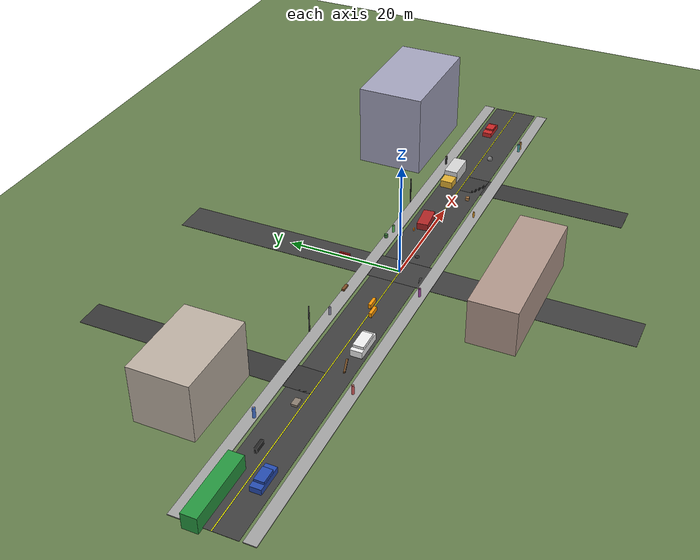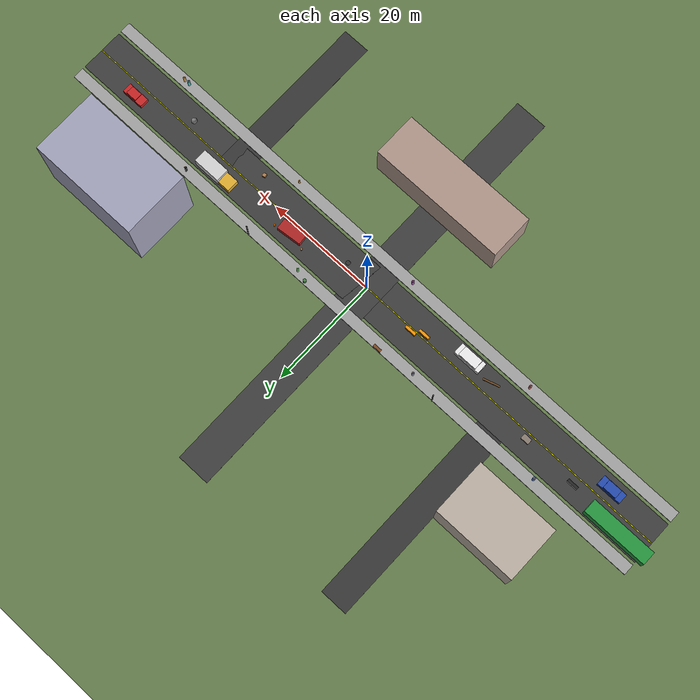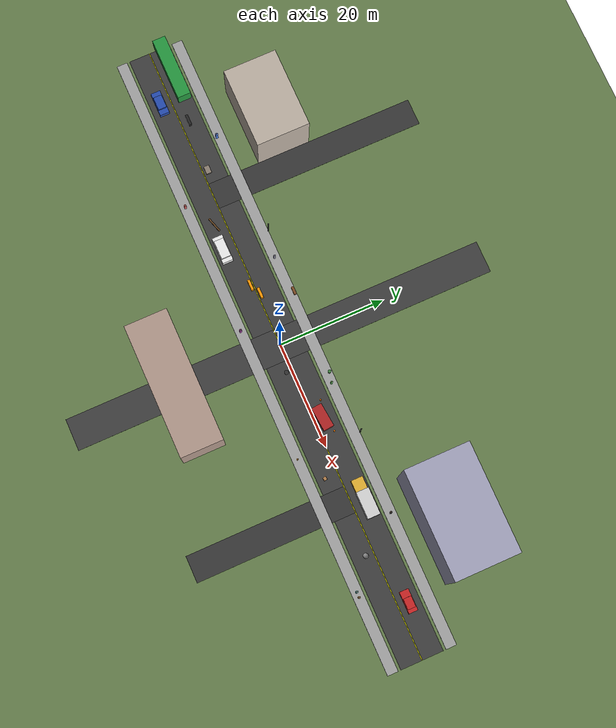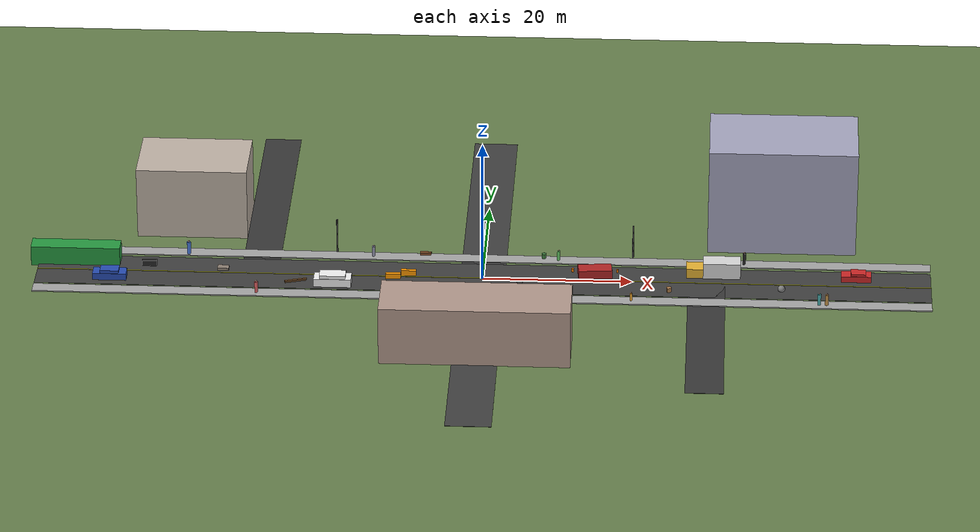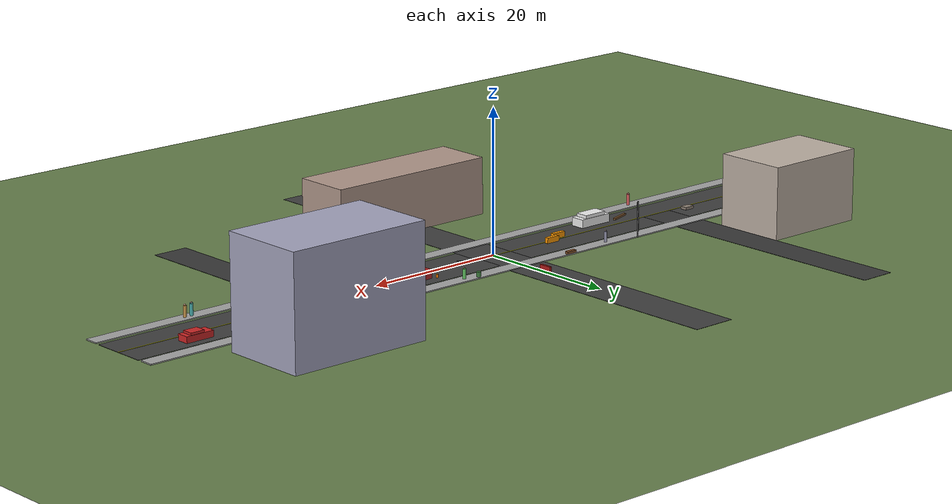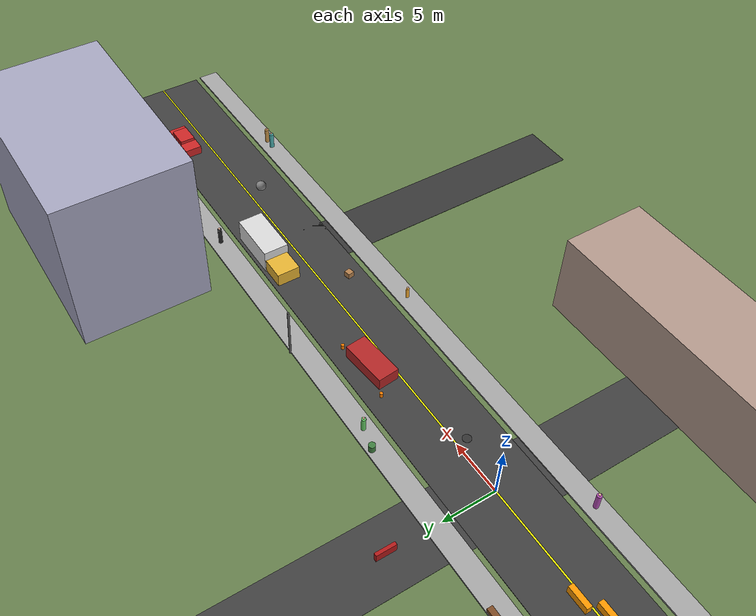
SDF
<?xml version="1.0" ?>
<sdf version="1.6">
  <world name="messy_road">
    <scene>
      <ambient>0.5 0.5 0.5 1</ambient>
      <background>0.7 0.85 1.0 1</background>
      <shadows>true</shadows>
    </scene>

    <light name="sun" type="directional">
      <pose>0 0 100 0 0 0</pose>
      <diffuse>0.9 0.9 0.9 1</diffuse>
      <specular>0.3 0.3 0.3 1</specular>
      <direction>-0.5 0.1 -0.9</direction>
      <cast_shadows>true</cast_shadows>
    </light>

    <physics type="ode">
      <max_step_size>0.001</max_step_size>
      <real_time_factor>1.0</real_time_factor>
      <real_time_update_rate>1000</real_time_update_rate>
    </physics>

    <!-- Ground Plane -->
    <model name="ground_plane">
      <static>true</static>
      <link name="link">
        <collision name="collision">
          <geometry>
            <plane>
              <normal>0 0 1</normal>
              <size>150 150</size>
            </plane>
          </geometry>
        </collision>
        <visual name="visual">
          <geometry>
            <plane>
              <normal>0 0 1</normal>
              <size>150 150</size>
            </plane>
          </geometry>
          <material>
            <ambient>0.4 0.5 0.3 1</ambient>
            <diffuse>0.4 0.5 0.3 1</diffuse>
          </material>
        </visual>
      </link>
    </model>

    <!-- ==================== MAIN ROADS ==================== -->

    <!-- Main Road (East-West) - 8m wide -->
    <model name="main_road_ew">
      <static>true</static>
      <link name="link">
        <pose>0 0 0.02 0 0 0</pose>
        <collision name="collision">
          <geometry>
            <box><size>120 8 0.04</size></box>
          </geometry>
        </collision>
        <visual name="visual">
          <geometry>
            <box><size>120 8 0.04</size></box>
          </geometry>
          <material>
            <ambient>0.2 0.2 0.2 1</ambient>
            <diffuse>0.25 0.25 0.25 1</diffuse>
          </material>
        </visual>
      </link>
    </model>

    <!-- Road Lane Markings -->
    <model name="center_line">
      <static>true</static>
      <link name="link">
        <pose>0 0 0.05 0 0 0</pose>
        <visual name="visual">
          <geometry>
            <box><size>120 0.15 0.01</size></box>
          </geometry>
          <material>
            <ambient>1 1 0 1</ambient>
            <diffuse>1 1 0 1</diffuse>
          </material>
        </visual>
      </link>
    </model>

    <!-- Secondary Road (North-South) - 6m wide -->
    <model name="secondary_road_ns">
      <static>true</static>
      <link name="link">
        <pose>0 0 0.02 0 0 0</pose>
        <collision name="collision">
          <geometry>
            <box><size>6 80 0.04</size></box>
          </geometry>
        </collision>
        <visual name="visual">
          <geometry>
            <box><size>6 80 0.04</size></box>
          </geometry>
          <material>
            <ambient>0.2 0.2 0.2 1</ambient>
            <diffuse>0.25 0.25 0.25 1</diffuse>
          </material>
        </visual>
      </link>
    </model>

    <!-- Side Street 1 -->
    <model name="side_street_1">
      <static>true</static>
      <link name="link">
        <pose>-30 20 0.02 0 0 0</pose>
        <collision name="collision">
          <geometry>
            <box><size>5 40 0.04</size></box>
          </geometry>
        </collision>
        <visual name="visual">
          <geometry>
            <box><size>5 40 0.04</size></box>
          </geometry>
          <material>
            <ambient>0.22 0.22 0.22 1</ambient>
            <diffuse>0.22 0.22 0.22 1</diffuse>
          </material>
        </visual>
      </link>
    </model>

    <!-- Side Street 2 -->
    <model name="side_street_2">
      <static>true</static>
      <link name="link">
        <pose>30 -15 0.02 0 0 0</pose>
        <collision name="collision">
          <geometry>
            <box><size>5 30 0.04</size></box>
          </geometry>
        </collision>
        <visual name="visual">
          <geometry>
            <box><size>5 30 0.04</size></box>
          </geometry>
          <material>
            <ambient>0.22 0.22 0.22 1</ambient>
            <diffuse>0.22 0.22 0.22 1</diffuse>
          </material>
        </visual>
      </link>
    </model>

    <!-- Sidewalks -->
    <model name="sidewalk_north">
      <static>true</static>
      <link name="link">
        <pose>0 5.5 0.08 0 0 0</pose>
        <collision name="collision">
          <geometry>
            <box><size>120 2 0.16</size></box>
          </geometry>
        </collision>
        <visual name="visual">
          <geometry>
            <box><size>120 2 0.16</size></box>
          </geometry>
          <material>
            <ambient>0.6 0.6 0.6 1</ambient>
            <diffuse>0.65 0.65 0.65 1</diffuse>
          </material>
        </visual>
      </link>
    </model>

    <model name="sidewalk_south">
      <static>true</static>
      <link name="link">
        <pose>0 -5.5 0.08 0 0 0</pose>
        <collision name="collision">
          <geometry>
            <box><size>120 2 0.16</size></box>
          </geometry>
        </collision>
        <visual name="visual">
          <geometry>
            <box><size>120 2 0.16</size></box>
          </geometry>
          <material>
            <ambient>0.6 0.6 0.6 1</ambient>
            <diffuse>0.65 0.65 0.65 1</diffuse>
          </material>
        </visual>
      </link>
    </model>

    <!-- ==================== STATIC OBSTACLES IN ROAD ==================== -->

    <!-- Broken Down Vehicle (Static) -->
    <model name="broken_vehicle">
      <static>true</static>
      <link name="link">
        <pose>15 1.5 0.5 0 0 0.1</pose>
        <collision name="collision">
          <geometry>
            <box><size>4.5 2.0 1.5</size></box>
          </geometry>
        </collision>
        <visual name="visual">
          <geometry>
            <box><size>4.5 2.0 1.5</size></box>
          </geometry>
          <material>
            <ambient>0.6 0.1 0.1 1</ambient>
            <diffuse>0.7 0.15 0.15 1</diffuse>
          </material>
        </visual>
      </link>
    </model>

    <!-- Construction Barrier 1 -->
    <model name="barrier_1">
      <static>true</static>
      <link name="link">
        <pose>-10 0.5 0.4 0 0 0</pose>
        <collision name="collision">
          <geometry>
            <box><size>2.0 0.5 0.8</size></box>
          </geometry>
        </collision>
        <visual name="visual">
          <geometry>
            <box><size>2.0 0.5 0.8</size></box>
          </geometry>
          <material>
            <ambient>1.0 0.5 0.0 1</ambient>
            <diffuse>1.0 0.6 0.0 1</diffuse>
          </material>
        </visual>
      </link>
    </model>

    <!-- Construction Barrier 2 -->
    <model name="barrier_2">
      <static>true</static>
      <link name="link">
        <pose>-12 -0.5 0.4 0 0 0</pose>
        <collision name="collision">
          <geometry>
            <box><size>2.0 0.5 0.8</size></box>
          </geometry>
        </collision>
        <visual name="visual">
          <geometry>
            <box><size>2.0 0.5 0.8</size></box>
          </geometry>
          <material>
            <ambient>1.0 0.5 0.0 1</ambient>
            <diffuse>1.0 0.6 0.0 1</diffuse>
          </material>
        </visual>
      </link>
    </model>

    <!-- Pothole Cover / Manhole -->
    <model name="manhole_1">
      <static>true</static>
      <link name="link">
        <pose>5 -1 0.03 0 0 0</pose>
        <collision name="collision">
          <geometry>
            <cylinder><radius>0.4</radius><length>0.06</length></cylinder>
          </geometry>
        </collision>
        <visual name="visual">
          <geometry>
            <cylinder><radius>0.4</radius><length>0.06</length></cylinder>
          </geometry>
          <material>
            <ambient>0.15 0.15 0.15 1</ambient>
            <diffuse>0.2 0.2 0.2 1</diffuse>
          </material>
        </visual>
      </link>
    </model>

    <!-- Traffic Cone 1 -->
    <model name="cone_1">
      <static>true</static>
      <link name="link">
        <pose>12 2.5 0.25 0 0 0</pose>
        <collision name="collision">
          <geometry>
            <cone><radius>0.15</radius><length>0.5</length></cone>
          </geometry>
        </collision>
        <visual name="visual">
          <geometry>
            <cylinder><radius>0.15</radius><length>0.5</length></cylinder>
          </geometry>
          <material>
            <ambient>1.0 0.4 0.0 1</ambient>
            <diffuse>1.0 0.5 0.0 1</diffuse>
          </material>
        </visual>
      </link>
    </model>

    <!-- Traffic Cone 2 -->
    <model name="cone_2">
      <static>true</static>
      <link name="link">
        <pose>18 2.5 0.25 0 0 0</pose>
        <collision name="collision">
          <geometry>
            <cylinder><radius>0.15</radius><length>0.5</length></cylinder>
          </geometry>
        </collision>
        <visual name="visual">
          <geometry>
            <cylinder><radius>0.15</radius><length>0.5</length></cylinder>
          </geometry>
          <material>
            <ambient>1.0 0.4 0.0 1</ambient>
            <diffuse>1.0 0.5 0.0 1</diffuse>
          </material>
        </visual>
      </link>
    </model>

    <!-- Fallen Tree Branch -->
    <model name="fallen_branch">
      <static>true</static>
      <link name="link">
        <pose>-25 -2 0.15 0 0 0.3</pose>
        <collision name="collision">
          <geometry>
            <box><size>3.0 0.3 0.3</size></box>
          </geometry>
        </collision>
        <visual name="visual">
          <geometry>
            <box><size>3.0 0.3 0.3</size></box>
          </geometry>
          <material>
            <ambient>0.4 0.25 0.1 1</ambient>
            <diffuse>0.45 0.3 0.15 1</diffuse>
          </material>
        </visual>
      </link>
    </model>

    <!-- Debris Pile -->
    <model name="debris_1">
      <static>true</static>
      <link name="link">
        <pose>-35 1 0.2 0 0 0</pose>
        <collision name="collision">
          <geometry>
            <box><size>1.5 1.0 0.4</size></box>
          </geometry>
        </collision>
        <visual name="visual">
          <geometry>
            <box><size>1.5 1.0 0.4</size></box>
          </geometry>
          <material>
            <ambient>0.5 0.45 0.4 1</ambient>
            <diffuse>0.55 0.5 0.45 1</diffuse>
          </material>
        </visual>
      </link>
    </model>

    <!-- Large Rock -->
    <model name="rock_1">
      <static>true</static>
      <link name="link">
        <pose>40 -1.5 0.25 0 0 0</pose>
        <collision name="collision">
          <geometry>
            <sphere><radius>0.5</radius></sphere>
          </geometry>
        </collision>
        <visual name="visual">
          <geometry>
            <sphere><radius>0.5</radius></sphere>
          </geometry>
          <material>
            <ambient>0.4 0.4 0.4 1</ambient>
            <diffuse>0.5 0.5 0.5 1</diffuse>
          </material>
        </visual>
      </link>
    </model>

    <!-- Cardboard Box -->
    <model name="box_obstacle">
      <static>true</static>
      <link name="link">
        <pose>25 -2.5 0.3 0 0 0.2</pose>
        <collision name="collision">
          <geometry>
            <box><size>0.6 0.6 0.6</size></box>
          </geometry>
        </collision>
        <visual name="visual">
          <geometry>
            <box><size>0.6 0.6 0.6</size></box>
          </geometry>
          <material>
            <ambient>0.6 0.45 0.25 1</ambient>
            <diffuse>0.7 0.5 0.3 1</diffuse>
          </material>
        </visual>
      </link>
    </model>

    <!-- ==================== HUMANS WITH DIFFERENT HEIGHTS ==================== -->

    <!-- Tall Human (1.9m) - Fast walker -->
    <model name="human_tall_fast">
      <pose>-40 5 0 0 0 0</pose>
      <link name="body">
        <pose>0 0 0.95 0 0 0</pose>
        <collision name="collision">
          <geometry>
            <cylinder><radius>0.25</radius><length>1.9</length></cylinder>
          </geometry>
        </collision>
        <visual name="visual">
          <geometry>
            <cylinder><radius>0.25</radius><length>1.9</length></cylinder>
          </geometry>
          <material>
            <ambient>0.2 0.4 0.8 1</ambient>
            <diffuse>0.3 0.5 0.9 1</diffuse>
          </material>
        </visual>
      </link>
      <link name="head">
        <pose>0 0 2.0 0 0 0</pose>
        <collision name="collision">
          <geometry>
            <sphere><radius>0.12</radius></sphere>
          </geometry>
        </collision>
        <visual name="visual">
          <geometry>
            <sphere><radius>0.12</radius></sphere>
          </geometry>
          <material>
            <ambient>0.9 0.7 0.6 1</ambient>
            <diffuse>0.95 0.75 0.65 1</diffuse>
          </material>
        </visual>
      </link>
    </model>

    <!-- Average Human (1.7m) - Medium walker -->
    <model name="human_avg_medium">
      <pose>-30 -5.5 0 0 0 0</pose>
      <link name="body">
        <pose>0 0 0.85 0 0 0</pose>
        <collision name="collision">
          <geometry>
            <cylinder><radius>0.22</radius><length>1.7</length></cylinder>
          </geometry>
        </collision>
        <visual name="visual">
          <geometry>
            <cylinder><radius>0.22</radius><length>1.7</length></cylinder>
          </geometry>
          <material>
            <ambient>0.8 0.3 0.3 1</ambient>
            <diffuse>0.9 0.4 0.4 1</diffuse>
          </material>
        </visual>
      </link>
      <link name="head">
        <pose>0 0 1.8 0 0 0</pose>
        <collision name="collision">
          <geometry>
            <sphere><radius>0.11</radius></sphere>
          </geometry>
        </collision>
        <visual name="visual">
          <geometry>
            <sphere><radius>0.11</radius></sphere>
          </geometry>
          <material>
            <ambient>0.9 0.7 0.6 1</ambient>
            <diffuse>0.95 0.75 0.65 1</diffuse>
          </material>
        </visual>
      </link>
    </model>

    <!-- Short Human (1.5m) - Slow walker -->
    <model name="human_short_slow">
      <pose>10 5.5 0 0 0 0</pose>
      <link name="body">
        <pose>0 0 0.75 0 0 0</pose>
        <collision name="collision">
          <geometry>
            <cylinder><radius>0.2</radius><length>1.5</length></cylinder>
          </geometry>
        </collision>
        <visual name="visual">
          <geometry>
            <cylinder><radius>0.2</radius><length>1.5</length></cylinder>
          </geometry>
          <material>
            <ambient>0.3 0.7 0.3 1</ambient>
            <diffuse>0.4 0.8 0.4 1</diffuse>
          </material>
        </visual>
      </link>
      <link name="head">
        <pose>0 0 1.6 0 0 0</pose>
        <collision name="collision">
          <geometry>
            <sphere><radius>0.1</radius></sphere>
          </geometry>
        </collision>
        <visual name="visual">
          <geometry>
            <sphere><radius>0.1</radius></sphere>
          </geometry>
          <material>
            <ambient>0.9 0.7 0.6 1</ambient>
            <diffuse>0.95 0.75 0.65 1</diffuse>
          </material>
        </visual>
      </link>
    </model>

    <!-- Child Human (1.2m) - Erratic runner -->
    <model name="human_child_runner">
      <pose>20 -5.5 0 0 0 0</pose>
      <link name="body">
        <pose>0 0 0.6 0 0 0</pose>
        <collision name="collision">
          <geometry>
            <cylinder><radius>0.15</radius><length>1.2</length></cylinder>
          </geometry>
        </collision>
        <visual name="visual">
          <geometry>
            <cylinder><radius>0.15</radius><length>1.2</length></cylinder>
          </geometry>
          <material>
            <ambient>0.9 0.6 0.1 1</ambient>
            <diffuse>1.0 0.7 0.2 1</diffuse>
          </material>
        </visual>
      </link>
      <link name="head">
        <pose>0 0 1.3 0 0 0</pose>
        <collision name="collision">
          <geometry>
            <sphere><radius>0.09</radius></sphere>
          </geometry>
        </collision>
        <visual name="visual">
          <geometry>
            <sphere><radius>0.09</radius></sphere>
          </geometry>
          <material>
            <ambient>0.9 0.7 0.6 1</ambient>
            <diffuse>0.95 0.75 0.65 1</diffuse>
          </material>
        </visual>
      </link>
    </model>

    <!-- Elderly Human (1.6m) - Very slow -->
    <model name="human_elderly_slow">
      <pose>-15 5.5 0 0 0 0</pose>
      <link name="body">
        <pose>0 0 0.8 0 0 0</pose>
        <collision name="collision">
          <geometry>
            <cylinder><radius>0.2</radius><length>1.6</length></cylinder>
          </geometry>
        </collision>
        <visual name="visual">
          <geometry>
            <cylinder><radius>0.2</radius><length>1.6</length></cylinder>
          </geometry>
          <material>
            <ambient>0.5 0.5 0.6 1</ambient>
            <diffuse>0.6 0.6 0.7 1</diffuse>
          </material>
        </visual>
      </link>
      <link name="head">
        <pose>0 0 1.7 0 0 0</pose>
        <collision name="collision">
          <geometry>
            <sphere><radius>0.1</radius></sphere>
          </geometry>
        </collision>
        <visual name="visual">
          <geometry>
            <sphere><radius>0.1</radius></sphere>
          </geometry>
          <material>
            <ambient>0.85 0.75 0.7 1</ambient>
            <diffuse>0.9 0.8 0.75 1</diffuse>
          </material>
        </visual>
      </link>
    </model>

    <!-- Jogger Human (1.75m) - Fast -->
    <model name="human_jogger">
      <pose>35 5.5 0 0 0 0</pose>
      <link name="body">
        <pose>0 0 0.875 0 0 0</pose>
        <collision name="collision">
          <geometry>
            <cylinder><radius>0.2</radius><length>1.75</length></cylinder>
          </geometry>
        </collision>
        <visual name="visual">
          <geometry>
            <cylinder><radius>0.2</radius><length>1.75</length></cylinder>
          </geometry>
          <material>
            <ambient>0.1 0.1 0.1 1</ambient>
            <diffuse>0.15 0.15 0.15 1</diffuse>
          </material>
        </visual>
      </link>
      <link name="head">
        <pose>0 0 1.85 0 0 0</pose>
        <collision name="collision">
          <geometry>
            <sphere><radius>0.11</radius></sphere>
          </geometry>
        </collision>
        <visual name="visual">
          <geometry>
            <sphere><radius>0.11</radius></sphere>
          </geometry>
          <material>
            <ambient>0.9 0.7 0.6 1</ambient>
            <diffuse>0.95 0.75 0.65 1</diffuse>
          </material>
        </visual>
      </link>
    </model>

    <!-- Distracted Phone User (1.68m) -->
    <model name="human_phone_user">
      <pose>-5 -5.5 0 0 0 0</pose>
      <link name="body">
        <pose>0 0 0.84 0 0 0</pose>
        <collision name="collision">
          <geometry>
            <cylinder><radius>0.22</radius><length>1.68</length></cylinder>
          </geometry>
        </collision>
        <visual name="visual">
          <geometry>
            <cylinder><radius>0.22</radius><length>1.68</length></cylinder>
          </geometry>
          <material>
            <ambient>0.6 0.2 0.6 1</ambient>
            <diffuse>0.7 0.3 0.7 1</diffuse>
          </material>
        </visual>
      </link>
      <link name="head">
        <pose>0 0 1.78 0 0 0</pose>
        <collision name="collision">
          <geometry>
            <sphere><radius>0.11</radius></sphere>
          </geometry>
        </collision>
        <visual name="visual">
          <geometry>
            <sphere><radius>0.11</radius></sphere>
          </geometry>
          <material>
            <ambient>0.9 0.7 0.6 1</ambient>
            <diffuse>0.95 0.75 0.65 1</diffuse>
          </material>
        </visual>
      </link>
    </model>

    <!-- Group Walker 1 (1.72m) -->
    <model name="human_group_1">
      <pose>45 -5.5 0 0 0 0</pose>
      <link name="body">
        <pose>0 0 0.86 0 0 0</pose>
        <collision name="collision">
          <geometry>
            <cylinder><radius>0.22</radius><length>1.72</length></cylinder>
          </geometry>
        </collision>
        <visual name="visual">
          <geometry>
            <cylinder><radius>0.22</radius><length>1.72</length></cylinder>
          </geometry>
          <material>
            <ambient>0.2 0.6 0.6 1</ambient>
            <diffuse>0.3 0.7 0.7 1</diffuse>
          </material>
        </visual>
      </link>
      <link name="head">
        <pose>0 0 1.82 0 0 0</pose>
        <collision name="collision">
          <geometry>
            <sphere><radius>0.11</radius></sphere>
          </geometry>
        </collision>
        <visual name="visual">
          <geometry>
            <sphere><radius>0.11</radius></sphere>
          </geometry>
          <material>
            <ambient>0.9 0.7 0.6 1</ambient>
            <diffuse>0.95 0.75 0.65 1</diffuse>
          </material>
        </visual>
      </link>
    </model>

    <!-- Group Walker 2 (1.65m) -->
    <model name="human_group_2">
      <pose>46 -5.5 0 0 0 0</pose>
      <link name="body">
        <pose>0 0 0.825 0 0 0</pose>
        <collision name="collision">
          <geometry>
            <cylinder><radius>0.21</radius><length>1.65</length></cylinder>
          </geometry>
        </collision>
        <visual name="visual">
          <geometry>
            <cylinder><radius>0.21</radius><length>1.65</length></cylinder>
          </geometry>
          <material>
            <ambient>0.7 0.5 0.2 1</ambient>
            <diffuse>0.8 0.6 0.3 1</diffuse>
          </material>
        </visual>
      </link>
      <link name="head">
        <pose>0 0 1.75 0 0 0</pose>
        <collision name="collision">
          <geometry>
            <sphere><radius>0.11</radius></sphere>
          </geometry>
        </collision>
        <visual name="visual">
          <geometry>
            <sphere><radius>0.11</radius></sphere>
          </geometry>
          <material>
            <ambient>0.9 0.7 0.6 1</ambient>
            <diffuse>0.95 0.75 0.65 1</diffuse>
          </material>
        </visual>
      </link>
    </model>

    <!-- ==================== MOVING VEHICLES ==================== -->

    <!-- Car 1 - Fast (Blue sedan) -->
    <model name="vehicle_car_fast">
      <pose>-50 -2 0 0 0 0</pose>
      <link name="chassis">
        <pose>0 0 0.4 0 0 0</pose>
        <collision name="collision">
          <geometry>
            <box><size>4.5 1.8 1.2</size></box>
          </geometry>
        </collision>
        <visual name="visual">
          <geometry>
            <box><size>4.5 1.8 1.2</size></box>
          </geometry>
          <material>
            <ambient>0.1 0.2 0.6 1</ambient>
            <diffuse>0.15 0.3 0.7 1</diffuse>
          </material>
        </visual>
      </link>
      <link name="roof">
        <pose>0 0 1.1 0 0 0</pose>
        <collision name="collision">
          <geometry>
            <box><size>2.5 1.6 0.6</size></box>
          </geometry>
        </collision>
        <visual name="visual">
          <geometry>
            <box><size>2.5 1.6 0.6</size></box>
          </geometry>
          <material>
            <ambient>0.1 0.2 0.6 1</ambient>
            <diffuse>0.15 0.3 0.7 1</diffuse>
          </material>
        </visual>
      </link>
    </model>

    <!-- Car 2 - Medium (Red hatchback) -->
    <model name="vehicle_car_medium">
      <pose>50 2 0 0 0 3.14159</pose>
      <link name="chassis">
        <pose>0 0 0.35 0 0 0</pose>
        <collision name="collision">
          <geometry>
            <box><size>4.0 1.7 1.1</size></box>
          </geometry>
        </collision>
        <visual name="visual">
          <geometry>
            <box><size>4.0 1.7 1.1</size></box>
          </geometry>
          <material>
            <ambient>0.7 0.1 0.1 1</ambient>
            <diffuse>0.8 0.15 0.15 1</diffuse>
          </material>
        </visual>
      </link>
      <link name="roof">
        <pose>-0.3 0 0.95 0 0 0</pose>
        <collision name="collision">
          <geometry>
            <box><size>2.0 1.5 0.5</size></box>
          </geometry>
        </collision>
        <visual name="visual">
          <geometry>
            <box><size>2.0 1.5 0.5</size></box>
          </geometry>
          <material>
            <ambient>0.7 0.1 0.1 1</ambient>
            <diffuse>0.8 0.15 0.15 1</diffuse>
          </material>
        </visual>
      </link>
    </model>

    <!-- Car 3 - Slow (White SUV) -->
    <model name="vehicle_suv_slow">
      <pose>-20 -2.5 0 0 0 0</pose>
      <link name="chassis">
        <pose>0 0 0.5 0 0 0</pose>
        <collision name="collision">
          <geometry>
            <box><size>5.0 2.0 1.4</size></box>
          </geometry>
        </collision>
        <visual name="visual">
          <geometry>
            <box><size>5.0 2.0 1.4</size></box>
          </geometry>
          <material>
            <ambient>0.9 0.9 0.9 1</ambient>
            <diffuse>0.95 0.95 0.95 1</diffuse>
          </material>
        </visual>
      </link>
      <link name="roof">
        <pose>0 0 1.3 0 0 0</pose>
        <collision name="collision">
          <geometry>
            <box><size>3.5 1.8 0.7</size></box>
          </geometry>
        </collision>
        <visual name="visual">
          <geometry>
            <box><size>3.5 1.8 0.7</size></box>
          </geometry>
          <material>
            <ambient>0.9 0.9 0.9 1</ambient>
            <diffuse>0.95 0.95 0.95 1</diffuse>
          </material>
        </visual>
      </link>
    </model>

    <!-- Truck - Very slow (Delivery truck) -->
    <model name="vehicle_truck_slow">
      <pose>30 2.5 0 0 0 3.14159</pose>
      <link name="cabin">
        <pose>1.5 0 0.6 0 0 0</pose>
        <collision name="collision">
          <geometry>
            <box><size>2.5 2.2 1.5</size></box>
          </geometry>
        </collision>
        <visual name="visual">
          <geometry>
            <box><size>2.5 2.2 1.5</size></box>
          </geometry>
          <material>
            <ambient>0.8 0.6 0.1 1</ambient>
            <diffuse>0.9 0.7 0.2 1</diffuse>
          </material>
        </visual>
      </link>
      <link name="cargo">
        <pose>-2 0 1.0 0 0 0</pose>
        <collision name="collision">
          <geometry>
            <box><size>5.0 2.4 2.5</size></box>
          </geometry>
        </collision>
        <visual name="visual">
          <geometry>
            <box><size>5.0 2.4 2.5</size></box>
          </geometry>
          <material>
            <ambient>0.8 0.8 0.8 1</ambient>
            <diffuse>0.85 0.85 0.85 1</diffuse>
          </material>
        </visual>
      </link>
    </model>

    <!-- Motorcycle - Fast -->
    <model name="vehicle_motorcycle">
      <pose>-45 1.5 0 0 0 0</pose>
      <link name="body">
        <pose>0 0 0.5 0 0 0</pose>
        <collision name="collision">
          <geometry>
            <box><size>2.0 0.5 0.8</size></box>
          </geometry>
        </collision>
        <visual name="visual">
          <geometry>
            <box><size>2.0 0.5 0.8</size></box>
          </geometry>
          <material>
            <ambient>0.1 0.1 0.1 1</ambient>
            <diffuse>0.15 0.15 0.15 1</diffuse>
          </material>
        </visual>
      </link>
    </model>

    <!-- Bus - Very slow -->
    <model name="vehicle_bus">
      <pose>-55 2.5 0 0 0 0</pose>
      <link name="body">
        <pose>0 0 1.2 0 0 0</pose>
        <collision name="collision">
          <geometry>
            <box><size>12.0 2.5 2.8</size></box>
          </geometry>
        </collision>
        <visual name="visual">
          <geometry>
            <box><size>12.0 2.5 2.8</size></box>
          </geometry>
          <material>
            <ambient>0.1 0.5 0.2 1</ambient>
            <diffuse>0.15 0.6 0.25 1</diffuse>
          </material>
        </visual>
      </link>
    </model>

    <!-- Bicycle -->
    <model name="vehicle_bicycle">
      <pose>0 10 0 0 0 1.5708</pose>
      <link name="frame">
        <pose>0 0 0.5 0 0 0</pose>
        <collision name="collision">
          <geometry>
            <box><size>1.8 0.3 0.8</size></box>
          </geometry>
        </collision>
        <visual name="visual">
          <geometry>
            <box><size>1.8 0.3 0.8</size></box>
          </geometry>
          <material>
            <ambient>0.6 0.0 0.0 1</ambient>
            <diffuse>0.7 0.1 0.1 1</diffuse>
          </material>
        </visual>
      </link>
    </model>

    <!-- ==================== BUILDINGS/STRUCTURES ==================== -->

    <model name="building_1">
      <static>true</static>
      <link name="link">
        <pose>-40 15 5 0 0 0</pose>
        <collision name="collision">
          <geometry>
            <box><size>15 10 10</size></box>
          </geometry>
        </collision>
        <visual name="visual">
          <geometry>
            <box><size>15 10 10</size></box>
          </geometry>
          <material>
            <ambient>0.7 0.65 0.6 1</ambient>
            <diffuse>0.75 0.7 0.65 1</diffuse>
          </material>
        </visual>
      </link>
    </model>

    <model name="building_2">
      <static>true</static>
      <link name="link">
        <pose>40 15 7.5 0 0 0</pose>
        <collision name="collision">
          <geometry>
            <box><size>20 12 15</size></box>
          </geometry>
        </collision>
        <visual name="visual">
          <geometry>
            <box><size>20 12 15</size></box>
          </geometry>
          <material>
            <ambient>0.6 0.6 0.7 1</ambient>
            <diffuse>0.65 0.65 0.75 1</diffuse>
          </material>
        </visual>
      </link>
    </model>

    <model name="building_3">
      <static>true</static>
      <link name="link">
        <pose>0 -20 4 0 0 0</pose>
        <collision name="collision">
          <geometry>
            <box><size>25 8 8</size></box>
          </geometry>
        </collision>
        <visual name="visual">
          <geometry>
            <box><size>25 8 8</size></box>
          </geometry>
          <material>
            <ambient>0.65 0.55 0.5 1</ambient>
            <diffuse>0.7 0.6 0.55 1</diffuse>
          </material>
        </visual>
      </link>
    </model>

    <!-- Street Lamp Posts -->
    <model name="lamp_1">
      <static>true</static>
      <link name="pole">
        <pose>-20 6.5 2.5 0 0 0</pose>
        <collision name="collision">
          <geometry>
            <cylinder><radius>0.1</radius><length>5</length></cylinder>
          </geometry>
        </collision>
        <visual name="visual">
          <geometry>
            <cylinder><radius>0.1</radius><length>5</length></cylinder>
          </geometry>
          <material>
            <ambient>0.3 0.3 0.3 1</ambient>
            <diffuse>0.35 0.35 0.35 1</diffuse>
          </material>
        </visual>
      </link>
    </model>

    <model name="lamp_2">
      <static>true</static>
      <link name="pole">
        <pose>20 6.5 2.5 0 0 0</pose>
        <collision name="collision">
          <geometry>
            <cylinder><radius>0.1</radius><length>5</length></cylinder>
          </geometry>
        </collision>
        <visual name="visual">
          <geometry>
            <cylinder><radius>0.1</radius><length>5</length></cylinder>
          </geometry>
          <material>
            <ambient>0.3 0.3 0.3 1</ambient>
            <diffuse>0.35 0.35 0.35 1</diffuse>
          </material>
        </visual>
      </link>
    </model>

    <!-- Bench -->
    <model name="bench_1">
      <static>true</static>
      <link name="link">
        <pose>-8 6.2 0.25 0 0 0</pose>
        <collision name="collision">
          <geometry>
            <box><size>1.5 0.5 0.5</size></box>
          </geometry>
        </collision>
        <visual name="visual">
          <geometry>
            <box><size>1.5 0.5 0.5</size></box>
          </geometry>
          <material>
            <ambient>0.4 0.25 0.1 1</ambient>
            <diffuse>0.5 0.3 0.15 1</diffuse>
          </material>
        </visual>
      </link>
    </model>

    <!-- Trash Bin -->
    <model name="trash_bin">
      <static>true</static>
      <link name="link">
        <pose>8 6 0.4 0 0 0</pose>
        <collision name="collision">
          <geometry>
            <cylinder><radius>0.3</radius><length>0.8</length></cylinder>
          </geometry>
        </collision>
        <visual name="visual">
          <geometry>
            <cylinder><radius>0.3</radius><length>0.8</length></cylinder>
          </geometry>
          <material>
            <ambient>0.2 0.4 0.2 1</ambient>
            <diffuse>0.25 0.5 0.25 1</diffuse>
          </material>
        </visual>
      </link>
    </model>

  </world>
</sdf>
